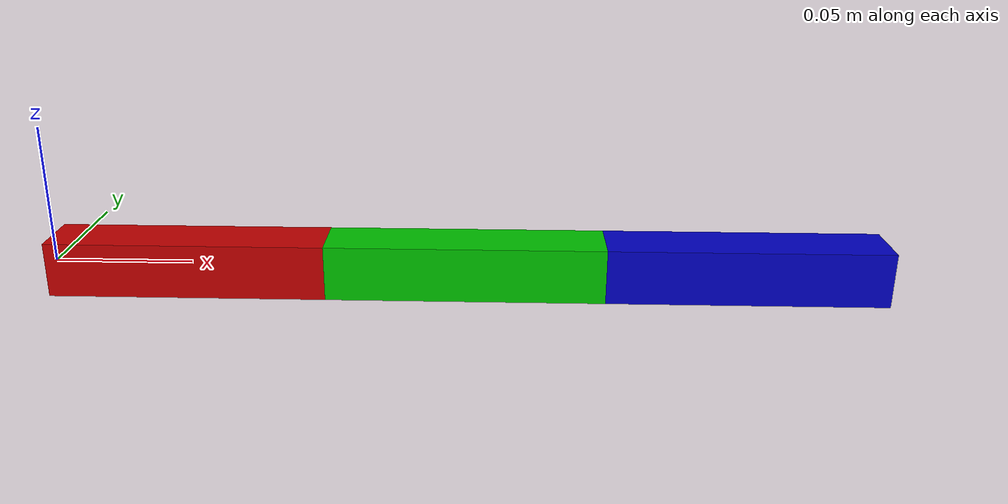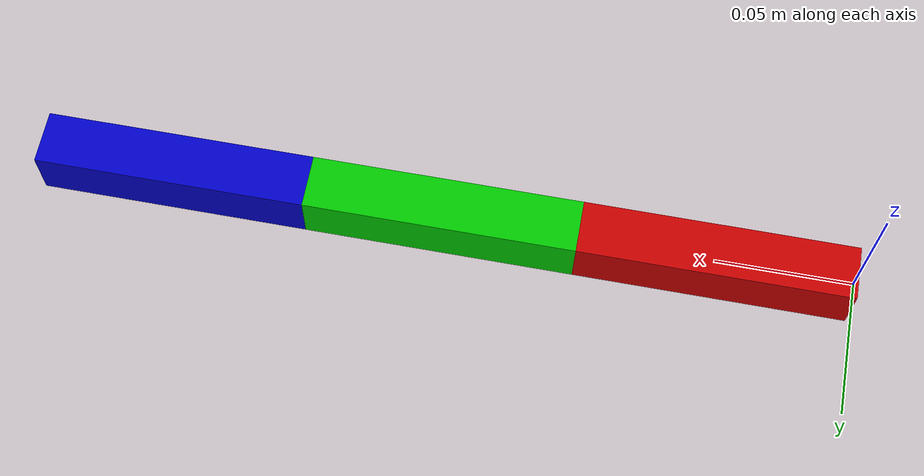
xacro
<?xml version="1.0"?>
<robot name="robot" xmlns:xacro="http://www.ros.org/wiki/xacro">

<!--set macro-->
<xacro:property name="width" value="0.02"/>
<xacro:property name="length" value="0.1"/>
<xacro:property name="mass" value="1"/>
<xacro:macro name="default_link" params="name color">
  <link name="${name}">
    <inertial>
      <origin xyz="${length/2} 0 0" rpy="0 0 0"/>
      <mass value="${mass}"/>
      <inertia
          ixx="${mass / 12.0 * (width*width + width*width)}" ixy="0.0" ixz="0.0"
          iyy="${mass / 12.0 * (length*length + width*width)}" iyz="0.0"
          izz="${mass / 12.0 * (width*width + length*length)}"/>
    </inertial>
    <visual>
      <geometry>
        <box size="${length} ${width} ${width}"/>
      </geometry>
      <origin xyz="${length/2} 0 0" rpy="0 0 0"/>
      <material name="${color}"/>
    </visual>

    <collision>
      <geometry>
          <box size="${length} ${width} ${width}"/>
      </geometry>
      <origin xyz="${length/2} 0 0" rpy="0 0 0"/>
    </collision>

  </link>
</xacro:macro>
<xacro:macro name="revolute_joint" params="name parent child">
  <joint name="${name}" type="continuous">
    <parent link="${parent}"/>
    <child link="${child}"/>
    <origin xyz="0 ${width} ${height1}" rpy="0 0 0"/>
    <axis xyz="0 0 1"/>
  </joint>
</xacro:macro>
<material name="black">
  <color rgba="0.0 0.0 0.0 1.0"/>
</material>

<material name="blue">
  <color rgba="0.0 0.0 0.8 1.0"/>
</material>

<material name="green">
  <color rgba="0.0 0.8 0.0 1.0"/>
</material>

<material name="grey">
  <color rgba="0.2 0.2 0.2 1.0"/>
</material>

<material name="orange">
  <color rgba="${255/255} ${108/255} ${10/255} 1.0"/>
</material>

<material name="brown">
  <color rgba="${222/255} ${207/255} ${195/255} 1.0"/>
</material>

<material name="red">
  <color rgba="0.8 0.0 0.0 1.0"/>
</material>

<material name="white">
  <color rgba="1.0 1.0 1.0 1.0"/>
</material>

  <xacro:default_link name="link_0" color="red"/>
  <xacro:default_link name="link_1" color="green"/>
  <xacro:default_link name="link_2" color="blue"/>

  <joint name="joint_1" type="continuous">
    <parent link="link_0"/>
    <child link="link_1"/>
    <origin xyz="${length} 0 0" rpy="0 0 0"/>
    <axis xyz="0 0 1"/>
  </joint>

  <joint name="joint_2" type="continuous">
    <parent link="link_1"/>
    <child link="link_2"/>
    <origin xyz="${length} 0 0" rpy="0 0 0"/>
    <axis xyz="0 0 1"/>
  </joint>

</robot>

<!--parse file : rosrun xacro xacro inorder -o 3R.urdf 3R.urdf.xacro-->
